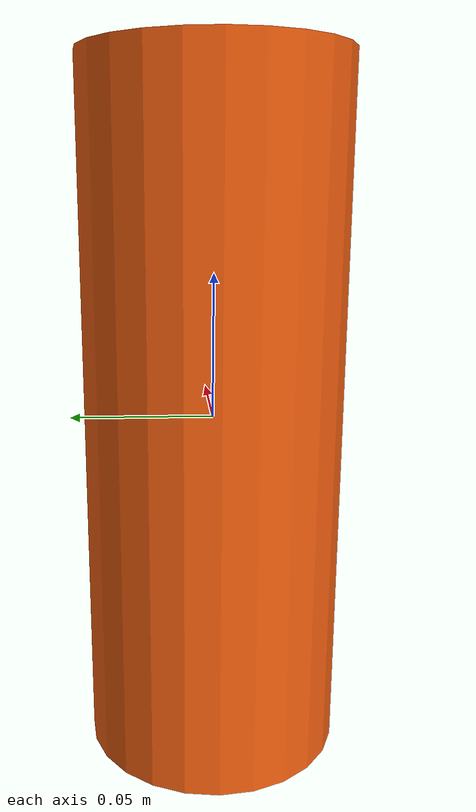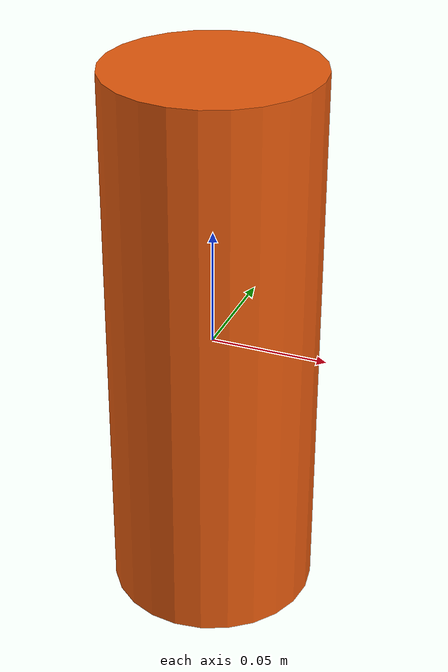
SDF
<?xml version="1.0"?>
<sdf version="1.9">
  <model name="bottle">
    <link name="link">
      <inertial><mass>0.45</mass>
        <inertia><ixx>2.387812e-03</ixx><iyy>2.387812e-03</iyy><izz>4.556250e-04</izz>
          <ixy>0</ixy><ixz>0</ixz><iyz>0</iyz></inertia>
      </inertial>
      <collision name="col">
        <geometry><cylinder><radius>0.045</radius><length>0.24</length></cylinder></geometry>
        <surface>
          <friction><ode><mu>1.5</mu><mu2>1.5</mu2></ode></friction>
          <contact><ode><soft_cfm>0.001</soft_cfm><soft_erp>0.2</soft_erp>
            <kp>1e6</kp><kd>100</kd></ode></contact>
        </surface>
      </collision>
      <visual name="vis">
        <geometry><cylinder><radius>0.045</radius><length>0.24</length></cylinder></geometry>
        <material><ambient>0.90 0.35 0.05 1</ambient><diffuse>0.90 0.35 0.05 1</diffuse>
          <specular>0.3 0.3 0.3 1</specular></material>
      </visual>
    </link>
    <plugin filename="gz-sim-pose-publisher-system"
            name="gz::sim::systems::PosePublisher">
      <publish_link_pose>false</publish_link_pose>
      <publish_visual_pose>false</publish_visual_pose>
      <publish_collision_pose>false</publish_collision_pose>
      <publish_sensor_pose>false</publish_sensor_pose>
      <publish_nested_model_pose>false</publish_nested_model_pose>
      <!-- the model pose, in the world frame - exactly what verification needs -->
      <publish_model_pose>true</publish_model_pose>
      <!-- one plain Pose, not a Pose_V, so the bridge conversion is the simplest one -->
      <use_pose_vector_msg>false</use_pose_vector_msg>
      <static_publisher>false</static_publisher>
      <update_frequency>20</update_frequency>
    </plugin>
  </model>
</sdf>
